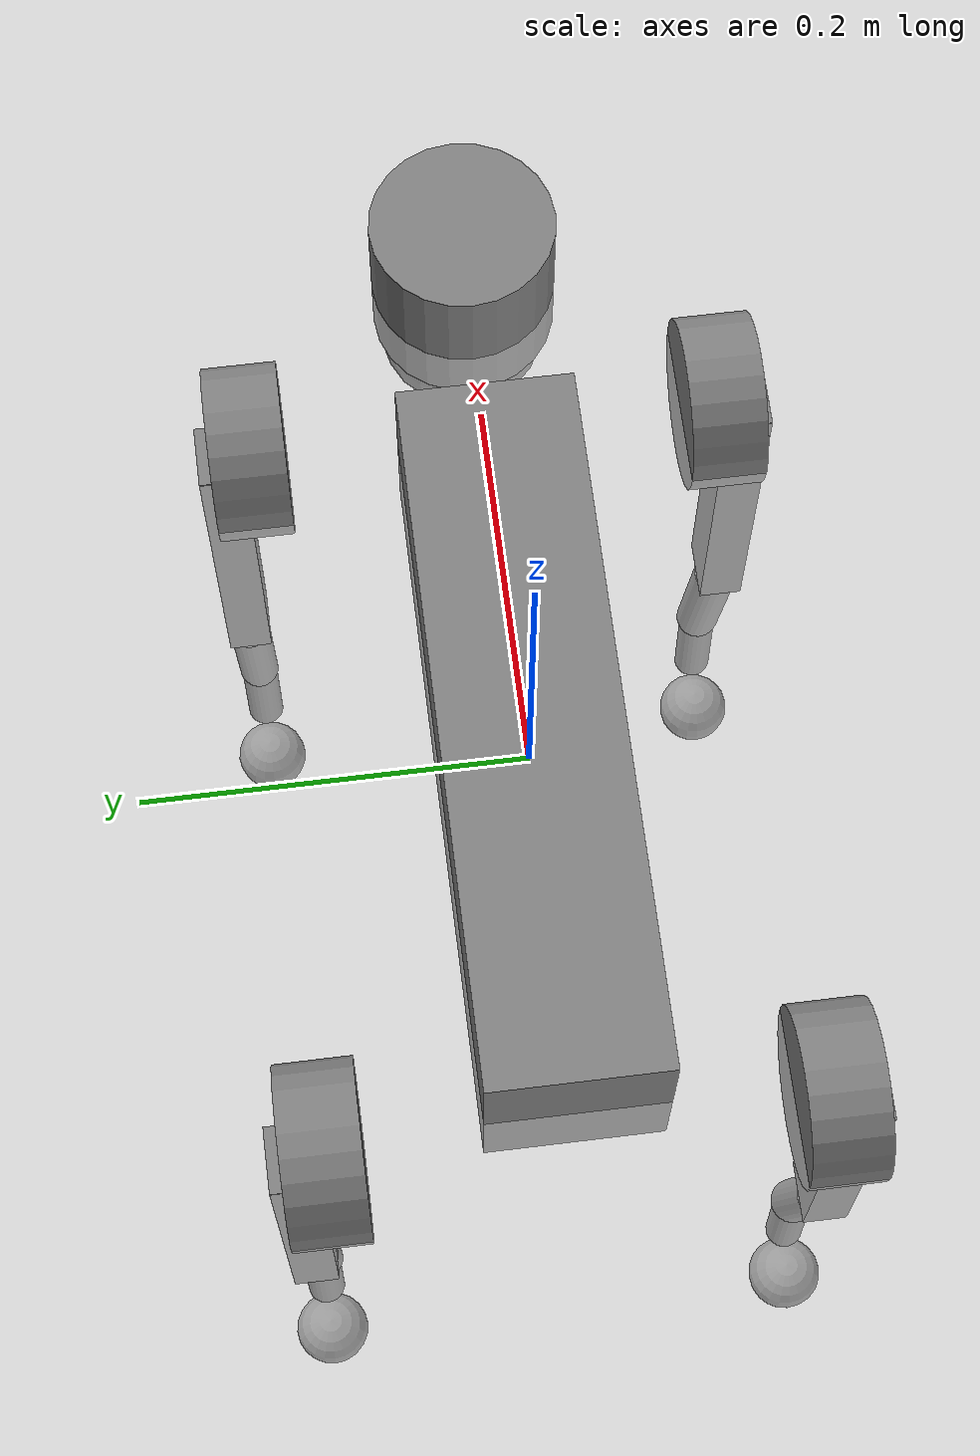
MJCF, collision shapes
<mujoco model="go2">
  <compiler angle="radian" meshdir="assets" autolimits="true"/>

  <option cone="pyramidal" impratio="100" timestep="0.005"/>

  <default>
    <geom solref="-1000 -80"/>
    <default class="go2">
      <geom friction="1.0" margin="0.001" condim="1"/>
      <joint armature="0.01" frictionloss="0.2"/>
      <default class="visual">
        <geom type="mesh" contype="0" conaffinity="0" group="2"/>
      </default>
      <default class="collision">
        <geom group="3"/>
        <default class="foot">
          <geom size="0.022" pos="-0.002 0 -0.213" priority="1" solimp="0.015 1 0.031" condim="6"
            friction="0.8 0.02 0.01"/>
        </default>
      </default>
    </default>
  </default>

  <asset>
    <texture type="skybox" builtin="gradient" rgb1=".3 .5 .7" rgb2="0 0 0" width="32" height="512"/>

    <texture name="texplane" type="2d" builtin="checker" rgb1="0.5 0.6 0.7" rgb2="0.2 0.3 0.4" width="100" height="100"/>
    <material name="MatPlane" reflectance="0.5" texture="texplane" texrepeat="1 1" texuniform="true"></material>

    <texture name="grid" type="2d" builtin="checker" rgb1="0.5 0.6 0.7" rgb2="0.2 0.3 0.4" width="512" height="512"/>
    <material name="grid" reflectance="0.5" texture="grid" texrepeat="1 1" texuniform="true"></material>

    <material name="metal" rgba=".9 .95 .95 1"/>
    <material name="black" rgba="0 0 0 1"/>
    <material name="white" rgba="1 1 1 1"/>
    <material name="gray" rgba="0.671705 0.692426 0.774270 1"/>

    <mesh file="base_0.obj"/>
    <mesh file="base_1.obj"/>
    <mesh file="base_2.obj"/>
    <mesh file="base_3.obj"/>
    <mesh file="base_4.obj"/>
    <mesh file="hip_0.obj"/>
    <mesh file="hip_1.obj"/>
    <mesh file="thigh_0.obj"/>
    <mesh file="thigh_1.obj"/>
    <mesh file="thigh_mirror_0.obj"/>
    <mesh file="thigh_mirror_1.obj"/>
    <mesh file="calf_0.obj"/>
    <mesh file="calf_1.obj"/>
    <mesh file="calf_mirror_0.obj"/>
    <mesh file="calf_mirror_1.obj"/>
    <mesh file="foot.obj"/>
  </asset>

  <worldbody>
    <geom name="floor" size="0 0 .125" type="plane" material="grid" condim="3" rgba="0.9 0.9 0.9 1"/>

    <light cutoff="100" diffuse="1 1 1" dir="-0 0 -1.3" directional="true" exponent="1" pos="0 0 1.3" specular=".1 .1 .1" castshadow="false"/>
    <light name="spotlight" mode="targetbodycom" target="trunk" pos="0 0 15"/>

    <body name="trunk" pos="0 0 0" childclass="go2">
      <camera name="track" mode="trackcom" pos="0 -2 0" xyaxes="1 0 0 0 0 1"/>
      <freejoint/>

      <inertial pos="0.021112 0 -0.005366" quat="-0.000543471 0.713435 -0.00173769 0.700719" mass="6.921"
        diaginertia="0.107027 0.0980771 0.0244531"/>

      <geom mesh="base_0" material="black" class="visual"/>
      <geom mesh="base_1" material="black" class="visual"/>
      <geom mesh="base_2" material="black" class="visual"/>
      <geom mesh="base_3" material="white" class="visual"/>
      <geom mesh="base_4" material="gray" class="visual"/>
      <geom name="trunk_1" size="0.1881 0.04675 0.057" type="box" class="collision"/>
      <geom name="trunk_2" size="0.05 0.045" pos="0.285 0 0.01" type="cylinder" class="collision"/>
      <geom name="trunk_3" size="0.047" pos="0.293 0 -0.06" class="collision"/>

      <body name="FL_hip" pos="0.1934 0.0465 0">
        <inertial pos="-0.0054 0.00194 -0.000105" quat="0.497014 0.499245 0.505462 0.498237" mass="0.678"
          diaginertia="0.00088403 0.000596003 0.000479967"/>
        <joint name="FL_hip_joint" axis="1 0 0" range="-1.0472 1.0472"/>
        <geom mesh="hip_0" material="metal" class="visual"/>
        <geom mesh="hip_1" material="gray" class="visual"/>
        <geom size="0.046 0.02" pos="0 0.08 0" quat="1 1 0 0" type="cylinder" class="collision"/>
        <body name="FL_thigh" pos="0 0.0955 0">
          <inertial pos="-0.00374 -0.0223 -0.0327" quat="0.829533 0.0847635 -0.0200632 0.551623" mass="1.152"
            diaginertia="0.00594973 0.00584149 0.000878787"/>
          <joint name="FL_thigh_joint" axis="0 1 0" range="-1.5708 3.4907"/>
          <geom mesh="thigh_0" material="metal" class="visual"/>
          <geom mesh="thigh_1" material="gray" class="visual"/>
          <geom size="0.1065 0.01225 0.017" pos="0 0 -0.1065" quat="0.707107 0 0.707107 0" type="box" class="collision"/>
          <body name="FL_calf" pos="0 0 -0.213">
            <inertial pos="0.00629595 -0.000622121 -0.141417" quat="0.710672 0.00154099 -0.00450087 0.703508"
              mass="0.241352" diaginertia="0.0014901 0.00146356 5.31397e-05"/>
            <joint name="FL_calf_joint" axis="0 1 0" range="-2.7227 -0.83776"/>
            <geom mesh="calf_0" material="gray" class="visual"/>
            <geom mesh="calf_1" material="black" class="visual"/>
            <geom size="0.012 0.06" pos="0.008 0 -0.06" quat="0.994493 0 -0.104807 0" type="cylinder" class="collision" name="FL_calf0"/>
            <geom size="0.011 0.0325" pos="0.02 0 -0.148" quat="0.999688 0 0.0249974 0" type="cylinder" class="collision"/>
            <geom pos="0 0 -0.213" mesh="foot" class="visual" material="black"/>
            <geom name="FL_foot" class="foot"/>
          </body>
        </body>
      </body>
      <body name="FR_hip" pos="0.1934 -0.0465 0">
        <inertial pos="-0.0054 -0.00194 -0.000105" quat="0.498237 0.505462 0.499245 0.497014" mass="0.678"
          diaginertia="0.00088403 0.000596003 0.000479967"/>
        <joint name="FR_hip_joint" axis="1 0 0" range="-1.0472 1.0472"/>
        <geom mesh="hip_0" material="metal" class="visual" quat="4.63268e-05 1 0 0"/>
        <geom mesh="hip_1" material="gray" class="visual" quat="4.63268e-05 1 0 0"/>
        <geom size="0.046 0.02" pos="0 -0.08 0" quat="0.707107 0.707107 0 0" type="cylinder" class="collision"/>
        <body name="FR_thigh" pos="0 -0.0955 0">
          <inertial pos="-0.00374 0.0223 -0.0327" quat="0.551623 -0.0200632 0.0847635 0.829533" mass="1.152"
            diaginertia="0.00594973 0.00584149 0.000878787"/>
          <joint name="FR_thigh_joint" axis="0 -1 0" range="-3.4907 1.5708"/>
          <geom mesh="thigh_mirror_0" material="metal" class="visual"/>
          <geom mesh="thigh_mirror_1" material="gray" class="visual"/>
          <geom size="0.1065 0.01225 0.017" pos="0 0 -0.1065" quat="0.707107 0 0.707107 0" type="box" class="collision"/>
          <body name="FR_calf" pos="0 0 -0.213">
            <inertial pos="0.00629595 0.000622121 -0.141417" quat="0.703508 -0.00450087 0.00154099 0.710672"
              mass="0.241352" diaginertia="0.0014901 0.00146356 5.31397e-05"/>
            <joint name="FR_calf_joint" axis="0 -1 0" range="0.83776 2.7227"/>
            <geom mesh="calf_mirror_0" material="gray" class="visual"/>
            <geom mesh="calf_mirror_1" material="black" class="visual"/>
            <geom size="0.013 0.06" pos="0.01 0 -0.06" quat="0.995004 0 -0.0998334 0" type="cylinder" class="collision" name="FR_calf0"/>
            <geom size="0.011 0.0325" pos="0.02 0 -0.148" quat="0.999688 0 0.0249974 0" type="cylinder" class="collision"/>
            <geom pos="0 0 -0.213" mesh="foot" class="visual" material="black"/>
            <geom name="FR_foot" class="foot"/>
          </body>
        </body>
      </body>
      <body name="RL_hip" pos="-0.1934 0.0465 0">
        <inertial pos="0.0054 0.00194 -0.000105" quat="0.505462 0.498237 0.497014 0.499245" mass="0.678"
          diaginertia="0.00088403 0.000596003 0.000479967"/>
        <joint name="RL_hip_joint" axis="-1 0 0" range="-1.0472 1.0472"/>
        <geom mesh="hip_0" material="metal" class="visual" quat="4.63268e-05 0 1 0"/>
        <geom mesh="hip_1" material="gray" class="visual" quat="4.63268e-05 0 1 0"/>
        <geom size="0.046 0.02" pos="0 0.08 0" quat="0.707107 0.707107 0 0" type="cylinder" class="collision"/>
        <body name="RL_thigh" pos="0 0.0955 0">
          <inertial pos="-0.00374 -0.0223 -0.0327" quat="0.829533 0.0847635 -0.0200632 0.551623" mass="1.152"
            diaginertia="0.00594973 0.00584149 0.000878787"/>
          <joint name="RL_thigh_joint" axis="0 1 0" range="-0.5236 4.5379"/>
          <geom mesh="thigh_0" material="metal" class="visual"/>
          <geom mesh="thigh_1" material="gray" class="visual"/>
          <geom size="0.1065 0.01225 0.017" pos="0 0 -0.1065" quat="0.707107 0 0.707107 0" type="box" class="collision"/>
          <body name="RL_calf" pos="0 0 -0.213">
            <inertial pos="0.00629595 -0.000622121 -0.141417" quat="0.710672 0.00154099 -0.00450087 0.703508"
              mass="0.241352" diaginertia="0.0014901 0.00146356 5.31397e-05"/>
            <joint name="RL_calf_joint" axis="0 1 0" range="-2.7227 -0.83776"/>
            <geom mesh="calf_0" material="gray" class="visual"/>
            <geom mesh="calf_1" material="black" class="visual"/>
            <geom size="0.013 0.06" pos="0.01 0 -0.06" quat="0.995004 0 -0.0998334 0" type="cylinder" class="collision" name="RL_calf0"/>
            <geom size="0.011 0.0325" pos="0.02 0 -0.148" quat="0.999688 0 0.0249974 0" type="cylinder" class="collision"/>
            <geom pos="0 0 -0.213" mesh="foot" class="visual" material="black"/>
            <geom name="RL_foot" class="foot"/>
          </body>
        </body>
      </body>
      <body name="RR_hip" pos="-0.1934 -0.0465 0">
        <inertial pos="0.0054 -0.00194 -0.000105" quat="0.499245 0.497014 0.498237 0.505462" mass="0.678"
          diaginertia="0.00088403 0.000596003 0.000479967"/>
        <joint name="RR_hip_joint" axis="-1 0 0" range="-1.0472 1.0472"/>
        <geom mesh="hip_0" material="metal" class="visual" quat="2.14617e-09 4.63268e-05 4.63268e-05 -1"/>
        <geom mesh="hip_1" material="gray" class="visual" quat="2.14617e-09 4.63268e-05 4.63268e-05 -1"/>
        <geom size="0.046 0.02" pos="0 -0.08 0" quat="0.707107 0.707107 0 0" type="cylinder" class="collision"/>
        <body name="RR_thigh" pos="0 -0.0955 0">
          <inertial pos="-0.00374 0.0223 -0.0327" quat="0.551623 -0.0200632 0.0847635 0.829533" mass="1.152"
            diaginertia="0.00594973 0.00584149 0.000878787"/>
          <joint name="RR_thigh_joint" axis="0 -1 0" range="-4.5379 0.5236"/>
          <geom mesh="thigh_mirror_0" material="metal" class="visual"/>
          <geom mesh="thigh_mirror_1" material="gray" class="visual"/>
          <geom size="0.1065 0.01225 0.017" pos="0 0 -0.1065" quat="0.707107 0 0.707107 0" type="box" class="collision"/>
          <body name="RR_calf" pos="0 0 -0.213">
            <inertial pos="0.00629595 0.000622121 -0.141417" quat="0.703508 -0.00450087 0.00154099 0.710672"
              mass="0.241352" diaginertia="0.0014901 0.00146356 5.31397e-05"/>
            <joint name="RR_calf_joint" axis="0 -1 0" range="0.83776 2.7227"/>
            <geom mesh="calf_mirror_0" material="gray" class="visual"/>
            <geom mesh="calf_mirror_1" material="black" class="visual"/>
            <geom size="0.013 0.06" pos="0.01 0 -0.06" quat="0.995004 0 -0.0998334 0" type="cylinder" class="collision" name="RR_calf0"/>
            <geom size="0.011 0.0325" pos="0.02 0 -0.148" quat="0.999688 0 0.0249974 0" type="cylinder" class="collision"/>
            <geom pos="0 0 -0.213" mesh="foot" class="visual" material="black"/>
            <geom name="RR_foot" class="foot"/>
          </body>
        </body>
      </body>
    </body>
  </worldbody>

  <actuator>
    <motor name="FL_hip" joint="FL_hip_joint" ctrlrange="-23.7 23.7"/>
    <motor name="FL_thigh" joint="FL_thigh_joint" ctrlrange="-23.7 23.7"/>
    <motor name="FL_calf" joint="FL_calf_joint" ctrlrange="-45.43 45.43"/>
    <motor name="FR_hip" joint="FR_hip_joint" ctrlrange="-23.7 23.7"/>
    <motor name="FR_thigh" joint="FR_thigh_joint" ctrlrange="-23.7 23.7"/>
    <motor name="FR_calf" joint="FR_calf_joint" ctrlrange="-45.43 45.43"/>
    <motor name="RL_hip" joint="RL_hip_joint" ctrlrange="-23.7 23.7"/>
    <motor name="RL_thigh" joint="RL_thigh_joint" ctrlrange="-23.7 23.7"/>
    <motor name="RL_calf" joint="RL_calf_joint" ctrlrange="-45.43 45.43"/>
    <motor name="RR_hip" joint="RR_hip_joint" ctrlrange="-23.7 23.7"/>
    <motor name="RR_thigh" joint="RR_thigh_joint" ctrlrange="-23.7 23.7"/>
    <motor name="RR_calf" joint="RR_calf_joint" ctrlrange="-45.43 45.43"/>
  </actuator>

  <keyframe>
    <key name="home" qpos="0 0 0.325 1 0 0 0 0.1 0.8 -1.5 -0.1 -0.8 1.5 -0.1 1.0 -1.5 0.1 -1.0 1.5"/>
  </keyframe>
</mujoco>
